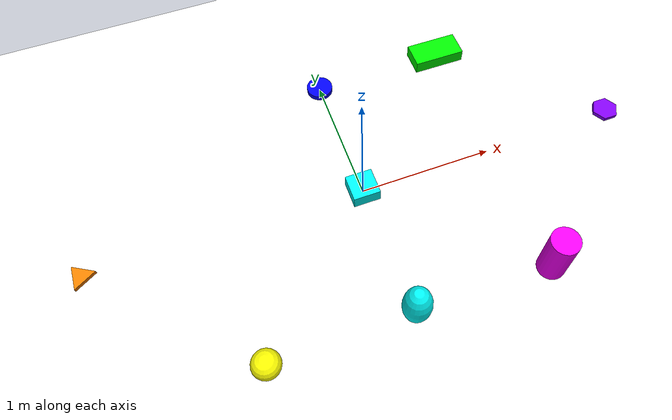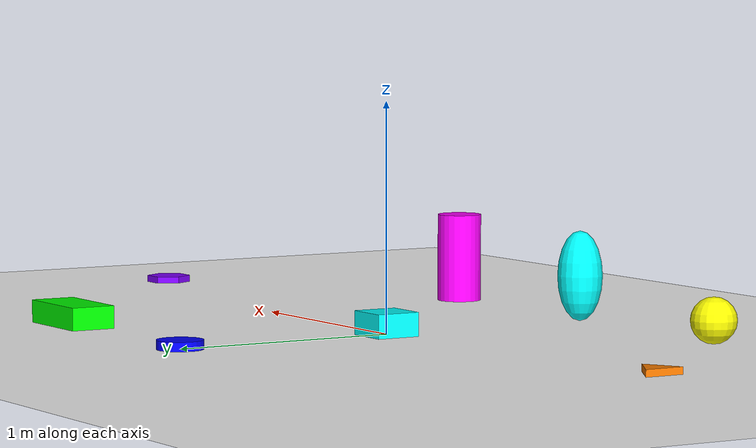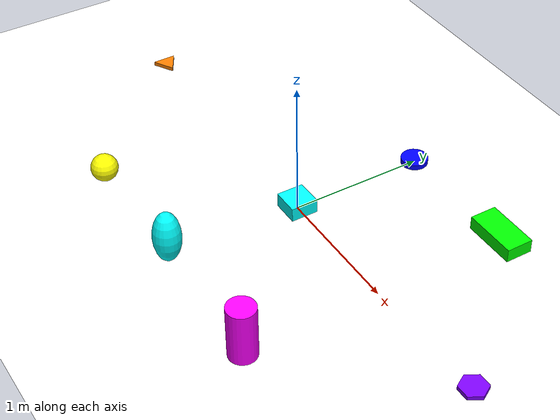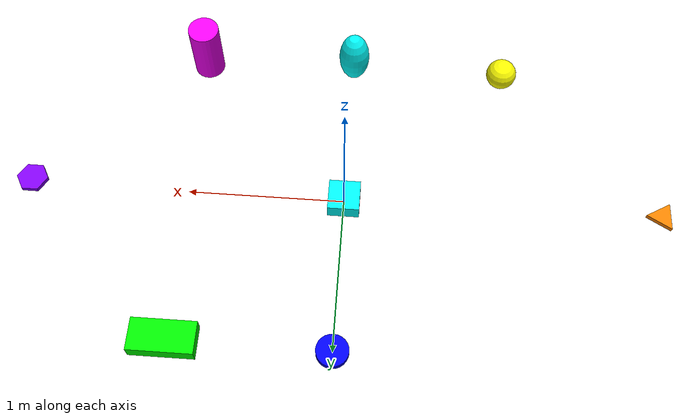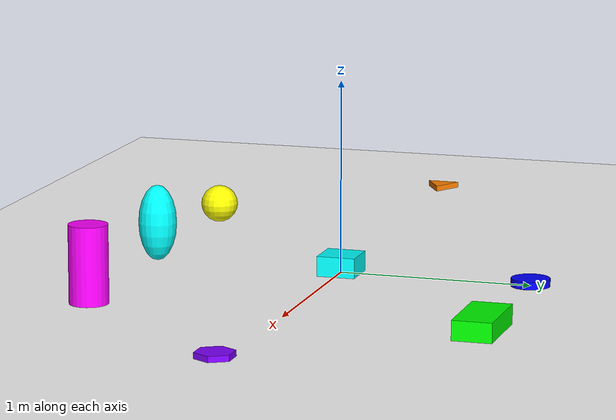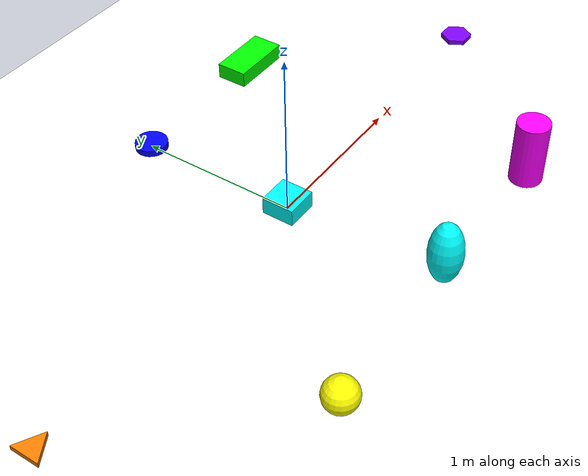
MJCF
<mujoco model="test">
    <worldbody>
        <light name="main_light" pos="0 0 2" dir="0 0 -1" diffuse="1 1 1"/>
        <geom name="ground" type="plane" size="10 10 0.1" rgba="1 1 1 1"/>
        <body name="square">
            <geom name="square" type="box" size="0.1 0.1 0.1" rgba="0 1 1 1"/>
        </body>

        <!-- 长方形（box） -->
        <body name="rectangle">
            <geom name="rectangle" type="box" size="0.2 0.1 0.05" pos="1 1 0.05" rgba="0 1 0 1"/>
        </body>

        <!-- 圆形（cylinder） -->
        <body name="circle">
            <geom name="circle" type="cylinder" size="0.1 0.02" pos="0 1 0.02" rgba="0 0 1 1"/>
        </body>

        <!-- 球体（sphere） -->
        <body name="sphere">
            <geom name="sphere" type="sphere" size="0.1" pos="-1 -1 0.1" rgba="1 1 0 1"/>
        </body>

        <!-- 圆柱（cylinder） -->
        <body name="cylinder">
            <geom name="cylinder" type="cylinder" size="0.1 0.2" pos="1 -1 0.2" rgba="1 0 1 1"/>
        </body>

        <!-- 圆锥（ellipsoid 近似） -->
        <body name="cone">
            <geom name="cone" type="ellipsoid" size="0.1 0.1 0.2" pos="0 -1 0.2" rgba="0 1 1 1"/>
        </body>

        <!-- 三角形 & 五边形（需要使用 mesh） -->
        <body name="triangle">
            <geom name="triangle" type="mesh" mesh="triangle_mesh" pos="-2 0 0.05" rgba="1 0.5 0 1"/>
        </body>

        <body name="pentagon">
            <geom name="pentagon" type="mesh" mesh="pentagon_mesh" pos="2 0 0.05" rgba="0.5 0 1 1"/>
        </body>
    </worldbody>

    <asset>
        <!-- 加载外部 Mesh 文件 -->
        <mesh name="triangle_mesh" file="triangle.obj" />
        <mesh name="pentagon_mesh" file="pentagon.obj" />
    </asset>
</mujoco>
